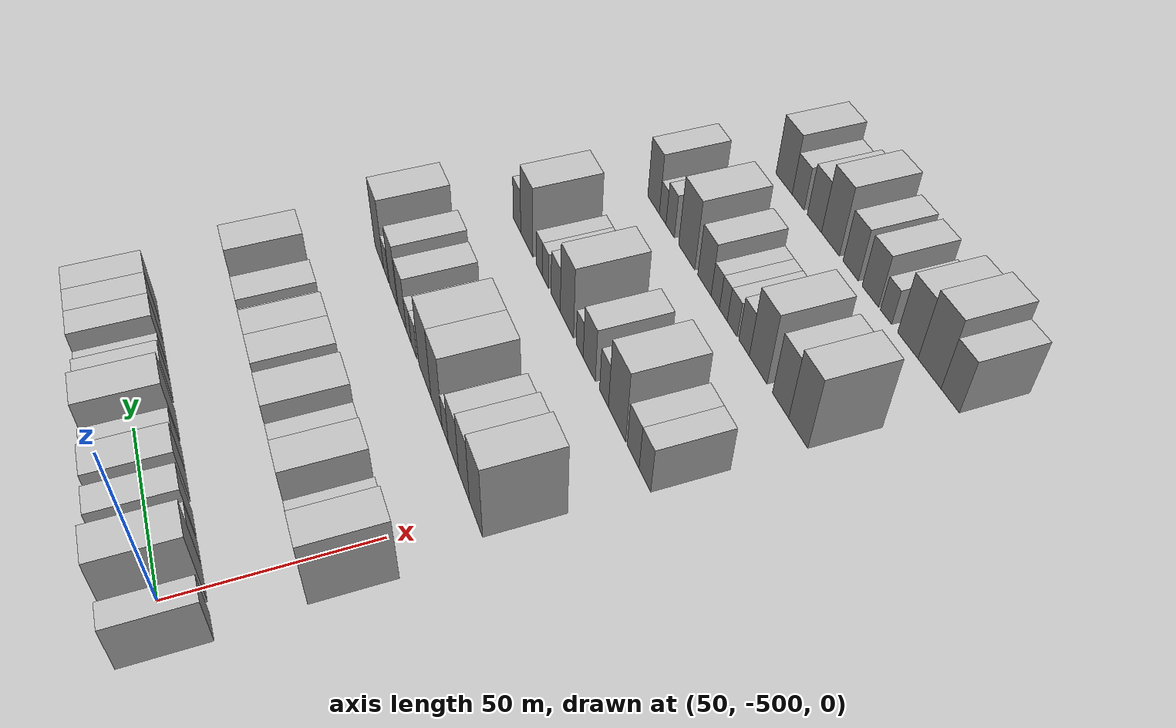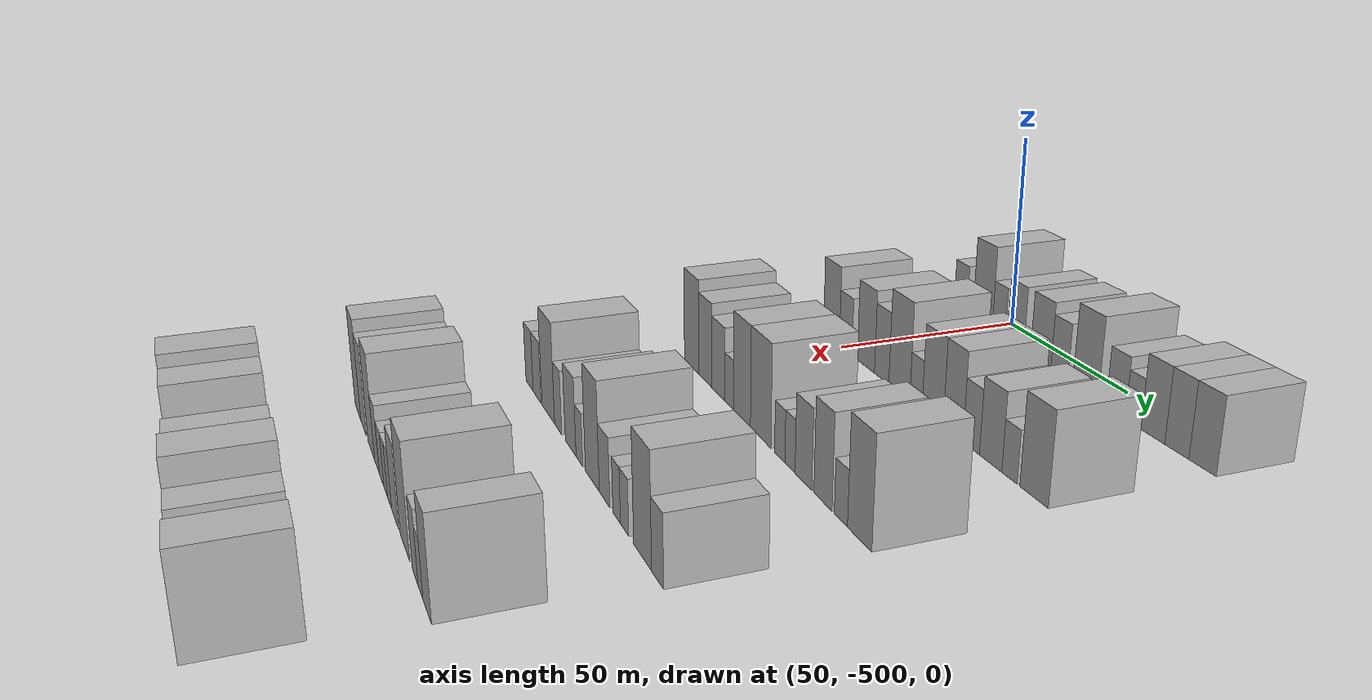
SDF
<sdf version="1.6">
 <world name="default">
  <model name="building_13">
   <static>1</static>
   <pose>50.0000 -510.1457 0 0.000000 0.000000 0.000000</pose>
   <link name="link">
    <pose>0 0 7.50 0 0 0</pose>
    <collision name="collision"><geometry><box><size>20.0000 6.7533 15.0000</size></box></geometry></collision>
    <visual name="visual">
     <cast_shadows>0</cast_shadows>
     <geometry><box><size>20.0000 6.7533 15.0000</size></box></geometry>
     <material>
      <script>
       <uri>model://HANNAS_wall/materials/scripts</uri>
       <uri>model://HANNAS_wall/materials/textures</uri>
       <name>vrc/HANNAS_wall</name>
      </script>
     </material>
    </visual>
   </link>
  </model>
  <model name="building_14">
   <static>1</static>
   <pose>50.0000 -498.9157 0 0.000000 0.000000 0.000000</pose>
   <link name="link">
    <pose>0 0 12.00 0 0 0</pose>
    <collision name="collision"><geometry><box><size>20.0000 9.7067 24.0000</size></box></geometry></collision>
    <visual name="visual">
     <cast_shadows>0</cast_shadows>
     <geometry><box><size>20.0000 9.7067 24.0000</size></box></geometry>
     <material>
      <script>
       <uri>model://HANNAS_wall/materials/scripts</uri>
       <uri>model://HANNAS_wall/materials/textures</uri>
       <name>vrc/HANNAS_wall</name>
      </script>
     </material>
    </visual>
   </link>
  </model>
  <model name="building_15">
   <static>1</static>
   <pose>50.0000 -490.9093 0 0.000000 0.000000 0.000000</pose>
   <link name="link">
    <pose>0 0 7.50 0 0 0</pose>
    <collision name="collision"><geometry><box><size>20.0000 6.3063 15.0000</size></box></geometry></collision>
    <visual name="visual">
     <cast_shadows>0</cast_shadows>
     <geometry><box><size>20.0000 6.3063 15.0000</size></box></geometry>
     <material>
      <script>
       <uri>model://HANNAS_wall/materials/scripts</uri>
       <uri>model://HANNAS_wall/materials/textures</uri>
       <name>vrc/HANNAS_wall</name>
      </script>
     </material>
    </visual>
   </link>
  </model>
  <model name="building_16">
   <static>1</static>
   <pose>50.0000 -482.9304 0 0.000000 0.000000 0.000000</pose>
   <link name="link">
    <pose>0 0 9.00 0 0 0</pose>
    <collision name="collision"><geometry><box><size>20.0000 7.6513 18.0000</size></box></geometry></collision>
    <visual name="visual">
     <cast_shadows>0</cast_shadows>
     <geometry><box><size>20.0000 7.6513 18.0000</size></box></geometry>
     <material>
      <script>
       <uri>model://HANNAS_wall/materials/scripts</uri>
       <uri>model://HANNAS_wall/materials/textures</uri>
       <name>vrc/HANNAS_wall</name>
      </script>
     </material>
    </visual>
   </link>
  </model>
  <model name="building_17">
   <static>1</static>
   <pose>50.0000 -471.6135 0 0.000000 0.000000 0.000000</pose>
   <link name="link">
    <pose>0 0 9.00 0 0 0</pose>
    <collision name="collision"><geometry><box><size>20.0000 8.9825 18.0000</size></box></geometry></collision>
    <visual name="visual">
     <cast_shadows>0</cast_shadows>
     <geometry><box><size>20.0000 8.9825 18.0000</size></box></geometry>
     <material>
      <script>
       <uri>model://HANNAS_wall/materials/scripts</uri>
       <uri>model://HANNAS_wall/materials/textures</uri>
       <name>vrc/HANNAS_wall</name>
      </script>
     </material>
    </visual>
   </link>
  </model>
  <model name="building_18">
   <static>1</static>
   <pose>50.0000 -463.5073 0 0.000000 0.000000 0.000000</pose>
   <link name="link">
    <pose>0 0 7.50 0 0 0</pose>
    <collision name="collision"><geometry><box><size>20.0000 7.2300 15.0000</size></box></geometry></collision>
    <visual name="visual">
     <cast_shadows>0</cast_shadows>
     <geometry><box><size>20.0000 7.2300 15.0000</size></box></geometry>
     <material>
      <script>
       <uri>model://HANNAS_wall/materials/scripts</uri>
       <uri>model://HANNAS_wall/materials/textures</uri>
       <name>vrc/HANNAS_wall</name>
      </script>
     </material>
    </visual>
   </link>
  </model>
  <model name="building_19">
   <static>1</static>
   <pose>50.0000 -452.8187 0 0.000000 0.000000 0.000000</pose>
   <link name="link">
    <pose>0 0 10.50 0 0 0</pose>
    <collision name="collision"><geometry><box><size>20.0000 10.1472 21.0000</size></box></geometry></collision>
    <visual name="visual">
     <cast_shadows>0</cast_shadows>
     <geometry><box><size>20.0000 10.1472 21.0000</size></box></geometry>
     <material>
      <script>
       <uri>model://HANNAS_wall/materials/scripts</uri>
       <uri>model://HANNAS_wall/materials/textures</uri>
       <name>vrc/HANNAS_wall</name>
      </script>
     </material>
    </visual>
   </link>
  </model>
  <model name="building_20">
   <static>1</static>
   <pose>50.0000 -441.1250 0 0.000000 0.000000 0.000000</pose>
   <link name="link">
    <pose>0 0 7.50 0 0 0</pose>
    <collision name="collision"><geometry><box><size>20.0000 7.2403 15.0000</size></box></geometry></collision>
    <visual name="visual">
     <cast_shadows>0</cast_shadows>
     <geometry><box><size>20.0000 7.2403 15.0000</size></box></geometry>
     <material>
      <script>
       <uri>model://HANNAS_wall/materials/scripts</uri>
       <uri>model://HANNAS_wall/materials/textures</uri>
       <name>vrc/HANNAS_wall</name>
      </script>
     </material>
    </visual>
   </link>
  </model>
  <model name="building_21">
   <static>1</static>
   <pose>50.0000 -434.6832 0 0.000000 0.000000 0.000000</pose>
   <link name="link">
    <pose>0 0 6.00 0 0 0</pose>
    <collision name="collision"><geometry><box><size>20.0000 5.6432 12.0000</size></box></geometry></collision>
    <visual name="visual">
     <cast_shadows>0</cast_shadows>
     <geometry><box><size>20.0000 5.6432 12.0000</size></box></geometry>
     <material>
      <script>
       <uri>model://HANNAS_wall/materials/scripts</uri>
       <uri>model://HANNAS_wall/materials/textures</uri>
       <name>vrc/HANNAS_wall</name>
      </script>
     </material>
    </visual>
   </link>
  </model>
  <model name="building_22">
   <static>1</static>
   <pose>50.0000 -427.7322 0 0.000000 0.000000 0.000000</pose>
   <link name="link">
    <pose>0 0 9.00 0 0 0</pose>
    <collision name="collision"><geometry><box><size>20.0000 8.2589 18.0000</size></box></geometry></collision>
    <visual name="visual">
     <cast_shadows>0</cast_shadows>
     <geometry><box><size>20.0000 8.2589 18.0000</size></box></geometry>
     <material>
      <script>
       <uri>model://HANNAS_wall/materials/scripts</uri>
       <uri>model://HANNAS_wall/materials/textures</uri>
       <name>vrc/HANNAS_wall</name>
      </script>
     </material>
    </visual>
   </link>
  </model>
  <model name="building_23">
   <static>1</static>
   <pose>50.0000 -419.6220 0 0.000000 0.000000 0.000000</pose>
   <link name="link">
    <pose>0 0 9.00 0 0 0</pose>
    <collision name="collision"><geometry><box><size>20.0000 7.9615 18.0000</size></box></geometry></collision>
    <visual name="visual">
     <cast_shadows>0</cast_shadows>
     <geometry><box><size>20.0000 7.9615 18.0000</size></box></geometry>
     <material>
      <script>
       <uri>model://HANNAS_wall/materials/scripts</uri>
       <uri>model://HANNAS_wall/materials/textures</uri>
       <name>vrc/HANNAS_wall</name>
      </script>
     </material>
    </visual>
   </link>
  </model>
  <model name="building_24">
   <static>1</static>
   <pose>50.0000 -411.3302 0 0.000000 0.000000 0.000000</pose>
   <link name="link">
    <pose>0 0 9.00 0 0 0</pose>
    <collision name="collision"><geometry><box><size>20.0000 8.6222 18.0000</size></box></geometry></collision>
    <visual name="visual">
     <cast_shadows>0</cast_shadows>
     <geometry><box><size>20.0000 8.6222 18.0000</size></box></geometry>
     <material>
      <script>
       <uri>model://HANNAS_wall/materials/scripts</uri>
       <uri>model://HANNAS_wall/materials/textures</uri>
       <name>vrc/HANNAS_wall</name>
      </script>
     </material>
    </visual>
   </link>
  </model>
  <model name="building_152">
   <static>1</static>
   <pose>90.0000 -506.4639 0 0.000000 0.000000 0.000000</pose>
   <link name="link">
    <pose>0 0 10.50 0 0 0</pose>
    <collision name="collision"><geometry><box><size>20.0000 9.5231 21.0000</size></box></geometry></collision>
    <visual name="visual">
     <cast_shadows>0</cast_shadows>
     <geometry><box><size>20.0000 9.5231 21.0000</size></box></geometry>
     <material>
      <script>
       <uri>model://HANNAS_wall/materials/scripts</uri>
       <uri>model://HANNAS_wall/materials/textures</uri>
       <name>vrc/HANNAS_wall</name>
      </script>
     </material>
    </visual>
   </link>
  </model>
  <model name="building_153">
   <static>1</static>
   <pose>90.0000 -498.0626 0 0.000000 0.000000 0.000000</pose>
   <link name="link">
    <pose>0 0 7.50 0 0 0</pose>
    <collision name="collision"><geometry><box><size>20.0000 7.2795 15.0000</size></box></geometry></collision>
    <visual name="visual">
     <cast_shadows>0</cast_shadows>
     <geometry><box><size>20.0000 7.2795 15.0000</size></box></geometry>
     <material>
      <script>
       <uri>model://HANNAS_wall/materials/scripts</uri>
       <uri>model://HANNAS_wall/materials/textures</uri>
       <name>vrc/HANNAS_wall</name>
      </script>
     </material>
    </visual>
   </link>
  </model>
  <model name="building_154">
   <static>1</static>
   <pose>90.0000 -486.7534 0 0.000000 0.000000 0.000000</pose>
   <link name="link">
    <pose>0 0 10.50 0 0 0</pose>
    <collision name="collision"><geometry><box><size>20.0000 9.3388 21.0000</size></box></geometry></collision>
    <visual name="visual">
     <cast_shadows>0</cast_shadows>
     <geometry><box><size>20.0000 9.3388 21.0000</size></box></geometry>
     <material>
      <script>
       <uri>model://HANNAS_wall/materials/scripts</uri>
       <uri>model://HANNAS_wall/materials/textures</uri>
       <name>vrc/HANNAS_wall</name>
      </script>
     </material>
    </visual>
   </link>
  </model>
  <model name="building_155">
   <static>1</static>
   <pose>90.0000 -478.3522 0 0.000000 0.000000 0.000000</pose>
   <link name="link">
    <pose>0 0 9.00 0 0 0</pose>
    <collision name="collision"><geometry><box><size>20.0000 7.4637 18.0000</size></box></geometry></collision>
    <visual name="visual">
     <cast_shadows>0</cast_shadows>
     <geometry><box><size>20.0000 7.4637 18.0000</size></box></geometry>
     <material>
      <script>
       <uri>model://HANNAS_wall/materials/scripts</uri>
       <uri>model://HANNAS_wall/materials/textures</uri>
       <name>vrc/HANNAS_wall</name>
      </script>
     </material>
    </visual>
   </link>
  </model>
  <model name="building_156">
   <static>1</static>
   <pose>90.0000 -469.3864 0 0.000000 0.000000 0.000000</pose>
   <link name="link">
    <pose>0 0 12.00 0 0 0</pose>
    <collision name="collision"><geometry><box><size>20.0000 10.4678 24.0000</size></box></geometry></collision>
    <visual name="visual">
     <cast_shadows>0</cast_shadows>
     <geometry><box><size>20.0000 10.4678 24.0000</size></box></geometry>
     <material>
      <script>
       <uri>model://HANNAS_wall/materials/scripts</uri>
       <uri>model://HANNAS_wall/materials/textures</uri>
       <name>vrc/HANNAS_wall</name>
      </script>
     </material>
    </visual>
   </link>
  </model>
  <model name="building_157">
   <static>1</static>
   <pose>90.0000 -461.2392 0 0.000000 0.000000 0.000000</pose>
   <link name="link">
    <pose>0 0 6.00 0 0 0</pose>
    <collision name="collision"><geometry><box><size>20.0000 5.8267 12.0000</size></box></geometry></collision>
    <visual name="visual">
     <cast_shadows>0</cast_shadows>
     <geometry><box><size>20.0000 5.8267 12.0000</size></box></geometry>
     <material>
      <script>
       <uri>model://HANNAS_wall/materials/scripts</uri>
       <uri>model://HANNAS_wall/materials/textures</uri>
       <name>vrc/HANNAS_wall</name>
      </script>
     </material>
    </visual>
   </link>
  </model>
  <model name="building_158">
   <static>1</static>
   <pose>90.0000 -453.4991 0 0.000000 0.000000 0.000000</pose>
   <link name="link">
    <pose>0 0 10.50 0 0 0</pose>
    <collision name="collision"><geometry><box><size>20.0000 9.6535 21.0000</size></box></geometry></collision>
    <visual name="visual">
     <cast_shadows>0</cast_shadows>
     <geometry><box><size>20.0000 9.6535 21.0000</size></box></geometry>
     <material>
      <script>
       <uri>model://HANNAS_wall/materials/scripts</uri>
       <uri>model://HANNAS_wall/materials/textures</uri>
       <name>vrc/HANNAS_wall</name>
      </script>
     </material>
    </visual>
   </link>
  </model>
  <model name="building_159">
   <static>1</static>
   <pose>90.0000 -444.3655 0 0.000000 0.000000 0.000000</pose>
   <link name="link">
    <pose>0 0 10.50 0 0 0</pose>
    <collision name="collision"><geometry><box><size>20.0000 8.6137 21.0000</size></box></geometry></collision>
    <visual name="visual">
     <cast_shadows>0</cast_shadows>
     <geometry><box><size>20.0000 8.6137 21.0000</size></box></geometry>
     <material>
      <script>
       <uri>model://HANNAS_wall/materials/scripts</uri>
       <uri>model://HANNAS_wall/materials/textures</uri>
       <name>vrc/HANNAS_wall</name>
      </script>
     </material>
    </visual>
   </link>
  </model>
  <model name="building_160">
   <static>1</static>
   <pose>90.0000 -436.6508 0 0.000000 0.000000 0.000000</pose>
   <link name="link">
    <pose>0 0 7.50 0 0 0</pose>
    <collision name="collision"><geometry><box><size>20.0000 6.8157 15.0000</size></box></geometry></collision>
    <visual name="visual">
     <cast_shadows>0</cast_shadows>
     <geometry><box><size>20.0000 6.8157 15.0000</size></box></geometry>
     <material>
      <script>
       <uri>model://HANNAS_wall/materials/scripts</uri>
       <uri>model://HANNAS_wall/materials/textures</uri>
       <name>vrc/HANNAS_wall</name>
      </script>
     </material>
    </visual>
   </link>
  </model>
  <model name="building_161">
   <static>1</static>
   <pose>90.0000 -428.8148 0 0.000000 0.000000 0.000000</pose>
   <link name="link">
    <pose>0 0 9.00 0 0 0</pose>
    <collision name="collision"><geometry><box><size>20.0000 8.8563 18.0000</size></box></geometry></collision>
    <visual name="visual">
     <cast_shadows>0</cast_shadows>
     <geometry><box><size>20.0000 8.8563 18.0000</size></box></geometry>
     <material>
      <script>
       <uri>model://HANNAS_wall/materials/scripts</uri>
       <uri>model://HANNAS_wall/materials/textures</uri>
       <name>vrc/HANNAS_wall</name>
      </script>
     </material>
    </visual>
   </link>
  </model>
  <model name="building_162">
   <static>1</static>
   <pose>90.0000 -421.4946 0 0.000000 0.000000 0.000000</pose>
   <link name="link">
    <pose>0 0 6.00 0 0 0</pose>
    <collision name="collision"><geometry><box><size>20.0000 5.7842 12.0000</size></box></geometry></collision>
    <visual name="visual">
     <cast_shadows>0</cast_shadows>
     <geometry><box><size>20.0000 5.7842 12.0000</size></box></geometry>
     <material>
      <script>
       <uri>model://HANNAS_wall/materials/scripts</uri>
       <uri>model://HANNAS_wall/materials/textures</uri>
       <name>vrc/HANNAS_wall</name>
      </script>
     </material>
    </visual>
   </link>
  </model>
  <model name="building_163">
   <static>1</static>
   <pose>90.0000 -412.4998 0 0.000000 0.000000 0.000000</pose>
   <link name="link">
    <pose>0 0 10.50 0 0 0</pose>
    <collision name="collision"><geometry><box><size>20.0000 10.2055 21.0000</size></box></geometry></collision>
    <visual name="visual">
     <cast_shadows>0</cast_shadows>
     <geometry><box><size>20.0000 10.2055 21.0000</size></box></geometry>
     <material>
      <script>
       <uri>model://HANNAS_wall/materials/scripts</uri>
       <uri>model://HANNAS_wall/materials/textures</uri>
       <name>vrc/HANNAS_wall</name>
      </script>
     </material>
    </visual>
   </link>
  </model>
  <model name="building_291">
   <static>1</static>
   <pose>130.0000 -501.7654 0 0.000000 0.000000 0.000000</pose>
   <link name="link">
    <pose>0 0 12.00 0 0 0</pose>
    <collision name="collision"><geometry><box><size>20.0000 10.2132 24.0000</size></box></geometry></collision>
    <visual name="visual">
     <cast_shadows>0</cast_shadows>
     <geometry><box><size>20.0000 10.2132 24.0000</size></box></geometry>
     <material>
      <script>
       <uri>model://HANNAS_wall/materials/scripts</uri>
       <uri>model://HANNAS_wall/materials/textures</uri>
       <name>vrc/HANNAS_wall</name>
      </script>
     </material>
    </visual>
   </link>
  </model>
  <model name="building_292">
   <static>1</static>
   <pose>130.0000 -492.2619 0 0.000000 0.000000 0.000000</pose>
   <link name="link">
    <pose>0 0 10.50 0 0 0</pose>
    <collision name="collision"><geometry><box><size>20.0000 8.7939 21.0000</size></box></geometry></collision>
    <visual name="visual">
     <cast_shadows>0</cast_shadows>
     <geometry><box><size>20.0000 8.7939 21.0000</size></box></geometry>
     <material>
      <script>
       <uri>model://HANNAS_wall/materials/scripts</uri>
       <uri>model://HANNAS_wall/materials/textures</uri>
       <name>vrc/HANNAS_wall</name>
      </script>
     </material>
    </visual>
   </link>
  </model>
  <model name="building_293">
   <static>1</static>
   <pose>130.0000 -483.4574 0 0.000000 0.000000 0.000000</pose>
   <link name="link">
    <pose>0 0 9.00 0 0 0</pose>
    <collision name="collision"><geometry><box><size>20.0000 8.8152 18.0000</size></box></geometry></collision>
    <visual name="visual">
     <cast_shadows>0</cast_shadows>
     <geometry><box><size>20.0000 8.8152 18.0000</size></box></geometry>
     <material>
      <script>
       <uri>model://HANNAS_wall/materials/scripts</uri>
       <uri>model://HANNAS_wall/materials/textures</uri>
       <name>vrc/HANNAS_wall</name>
      </script>
     </material>
    </visual>
   </link>
  </model>
  <model name="building_294">
   <static>1</static>
   <pose>130.0000 -476.3297 0 0.000000 0.000000 0.000000</pose>
   <link name="link">
    <pose>0 0 6.00 0 0 0</pose>
    <collision name="collision"><geometry><box><size>20.0000 5.4403 12.0000</size></box></geometry></collision>
    <visual name="visual">
     <cast_shadows>0</cast_shadows>
     <geometry><box><size>20.0000 5.4403 12.0000</size></box></geometry>
     <material>
      <script>
       <uri>model://HANNAS_wall/materials/scripts</uri>
       <uri>model://HANNAS_wall/materials/textures</uri>
       <name>vrc/HANNAS_wall</name>
      </script>
     </material>
    </visual>
   </link>
  </model>
  <model name="building_295">
   <static>1</static>
   <pose>130.0000 -468.5632 0 0.000000 0.000000 0.000000</pose>
   <link name="link">
    <pose>0 0 12.00 0 0 0</pose>
    <collision name="collision"><geometry><box><size>20.0000 10.0926 24.0000</size></box></geometry></collision>
    <visual name="visual">
     <cast_shadows>0</cast_shadows>
     <geometry><box><size>20.0000 10.0926 24.0000</size></box></geometry>
     <material>
      <script>
       <uri>model://HANNAS_wall/materials/scripts</uri>
       <uri>model://HANNAS_wall/materials/textures</uri>
       <name>vrc/HANNAS_wall</name>
      </script>
     </material>
    </visual>
   </link>
  </model>
  <model name="building_296">
   <static>1</static>
   <pose>130.0000 -457.7151 0 0.000000 0.000000 0.000000</pose>
   <link name="link">
    <pose>0 0 12.00 0 0 0</pose>
    <collision name="collision"><geometry><box><size>20.0000 11.6036 24.0000</size></box></geometry></collision>
    <visual name="visual">
     <cast_shadows>0</cast_shadows>
     <geometry><box><size>20.0000 11.6036 24.0000</size></box></geometry>
     <material>
      <script>
       <uri>model://HANNAS_wall/materials/scripts</uri>
       <uri>model://HANNAS_wall/materials/textures</uri>
       <name>vrc/HANNAS_wall</name>
      </script>
     </material>
    </visual>
   </link>
  </model>
  <model name="building_297">
   <static>1</static>
   <pose>130.0000 -447.1811 0 0.000000 0.000000 0.000000</pose>
   <link name="link">
    <pose>0 0 6.00 0 0 0</pose>
    <collision name="collision"><geometry><box><size>20.0000 5.4644 12.0000</size></box></geometry></collision>
    <visual name="visual">
     <cast_shadows>0</cast_shadows>
     <geometry><box><size>20.0000 5.4644 12.0000</size></box></geometry>
     <material>
      <script>
       <uri>model://HANNAS_wall/materials/scripts</uri>
       <uri>model://HANNAS_wall/materials/textures</uri>
       <name>vrc/HANNAS_wall</name>
      </script>
     </material>
    </visual>
   </link>
  </model>
  <model name="building_298">
   <static>1</static>
   <pose>130.0000 -441.8219 0 0.000000 0.000000 0.000000</pose>
   <link name="link">
    <pose>0 0 6.00 0 0 0</pose>
    <collision name="collision"><geometry><box><size>20.0000 5.2540 12.0000</size></box></geometry></collision>
    <visual name="visual">
     <cast_shadows>0</cast_shadows>
     <geometry><box><size>20.0000 5.2540 12.0000</size></box></geometry>
     <material>
      <script>
       <uri>model://HANNAS_wall/materials/scripts</uri>
       <uri>model://HANNAS_wall/materials/textures</uri>
       <name>vrc/HANNAS_wall</name>
      </script>
     </material>
    </visual>
   </link>
  </model>
  <model name="building_299">
   <static>1</static>
   <pose>130.0000 -435.0427 0 0.000000 0.000000 0.000000</pose>
   <link name="link">
    <pose>0 0 9.00 0 0 0</pose>
    <collision name="collision"><geometry><box><size>20.0000 8.3045 18.0000</size></box></geometry></collision>
    <visual name="visual">
     <cast_shadows>0</cast_shadows>
     <geometry><box><size>20.0000 8.3045 18.0000</size></box></geometry>
     <material>
      <script>
       <uri>model://HANNAS_wall/materials/scripts</uri>
       <uri>model://HANNAS_wall/materials/textures</uri>
       <name>vrc/HANNAS_wall</name>
      </script>
     </material>
    </visual>
   </link>
  </model>
  <model name="building_300">
   <static>1</static>
   <pose>130.0000 -425.6519 0 0.000000 0.000000 0.000000</pose>
   <link name="link">
    <pose>0 0 10.50 0 0 0</pose>
    <collision name="collision"><geometry><box><size>20.0000 8.4772 21.0000</size></box></geometry></collision>
    <visual name="visual">
     <cast_shadows>0</cast_shadows>
     <geometry><box><size>20.0000 8.4772 21.0000</size></box></geometry>
     <material>
      <script>
       <uri>model://HANNAS_wall/materials/scripts</uri>
       <uri>model://HANNAS_wall/materials/textures</uri>
       <name>vrc/HANNAS_wall</name>
      </script>
     </material>
    </visual>
   </link>
  </model>
  <model name="building_301">
   <static>1</static>
   <pose>130.0000 -417.4935 0 0.000000 0.000000 0.000000</pose>
   <link name="link">
    <pose>0 0 6.00 0 0 0</pose>
    <collision name="collision"><geometry><box><size>20.0000 5.8395 12.0000</size></box></geometry></collision>
    <visual name="visual">
     <cast_shadows>0</cast_shadows>
     <geometry><box><size>20.0000 5.8395 12.0000</size></box></geometry>
     <material>
      <script>
       <uri>model://HANNAS_wall/materials/scripts</uri>
       <uri>model://HANNAS_wall/materials/textures</uri>
       <name>vrc/HANNAS_wall</name>
      </script>
     </material>
    </visual>
   </link>
  </model>
  <model name="building_302">
   <static>1</static>
   <pose>130.0000 -409.4521 0 0.000000 0.000000 0.000000</pose>
   <link name="link">
    <pose>0 0 12.00 0 0 0</pose>
    <collision name="collision"><geometry><box><size>20.0000 10.2434 24.0000</size></box></geometry></collision>
    <visual name="visual">
     <cast_shadows>0</cast_shadows>
     <geometry><box><size>20.0000 10.2434 24.0000</size></box></geometry>
     <material>
      <script>
       <uri>model://HANNAS_wall/materials/scripts</uri>
       <uri>model://HANNAS_wall/materials/textures</uri>
       <name>vrc/HANNAS_wall</name>
      </script>
     </material>
    </visual>
   </link>
  </model>
  <model name="building_433">
   <static>1</static>
   <pose>170.0000 -503.9211 0 0.000000 0.000000 0.000000</pose>
   <link name="link">
    <pose>0 0 7.50 0 0 0</pose>
    <collision name="collision"><geometry><box><size>20.0000 7.0839 15.0000</size></box></geometry></collision>
    <visual name="visual">
     <cast_shadows>0</cast_shadows>
     <geometry><box><size>20.0000 7.0839 15.0000</size></box></geometry>
     <material>
      <script>
       <uri>model://HANNAS_wall/materials/scripts</uri>
       <uri>model://HANNAS_wall/materials/textures</uri>
       <name>vrc/HANNAS_wall</name>
      </script>
     </material>
    </visual>
   </link>
  </model>
  <model name="building_434">
   <static>1</static>
   <pose>170.0000 -496.6546 0 0.000000 0.000000 0.000000</pose>
   <link name="link">
    <pose>0 0 7.50 0 0 0</pose>
    <collision name="collision"><geometry><box><size>20.0000 7.4492 15.0000</size></box></geometry></collision>
    <visual name="visual">
     <cast_shadows>0</cast_shadows>
     <geometry><box><size>20.0000 7.4492 15.0000</size></box></geometry>
     <material>
      <script>
       <uri>model://HANNAS_wall/materials/scripts</uri>
       <uri>model://HANNAS_wall/materials/textures</uri>
       <name>vrc/HANNAS_wall</name>
      </script>
     </material>
    </visual>
   </link>
  </model>
  <model name="building_435">
   <static>1</static>
   <pose>170.0000 -486.2557 0 0.000000 0.000000 0.000000</pose>
   <link name="link">
    <pose>0 0 12.00 0 0 0</pose>
    <collision name="collision"><geometry><box><size>20.0000 11.3486 24.0000</size></box></geometry></collision>
    <visual name="visual">
     <cast_shadows>0</cast_shadows>
     <geometry><box><size>20.0000 11.3486 24.0000</size></box></geometry>
     <material>
      <script>
       <uri>model://HANNAS_wall/materials/scripts</uri>
       <uri>model://HANNAS_wall/materials/textures</uri>
       <name>vrc/HANNAS_wall</name>
      </script>
     </material>
    </visual>
   </link>
  </model>
  <model name="building_436">
   <static>1</static>
   <pose>170.0000 -477.5650 0 0.000000 0.000000 0.000000</pose>
   <link name="link">
    <pose>0 0 7.50 0 0 0</pose>
    <collision name="collision"><geometry><box><size>20.0000 6.0329 15.0000</size></box></geometry></collision>
    <visual name="visual">
     <cast_shadows>0</cast_shadows>
     <geometry><box><size>20.0000 6.0329 15.0000</size></box></geometry>
     <material>
      <script>
       <uri>model://HANNAS_wall/materials/scripts</uri>
       <uri>model://HANNAS_wall/materials/textures</uri>
       <name>vrc/HANNAS_wall</name>
      </script>
     </material>
    </visual>
   </link>
  </model>
  <model name="building_437">
   <static>1</static>
   <pose>170.0000 -467.2080 0 0.000000 0.000000 0.000000</pose>
   <link name="link">
    <pose>0 0 9.00 0 0 0</pose>
    <collision name="collision"><geometry><box><size>20.0000 8.6811 18.0000</size></box></geometry></collision>
    <visual name="visual">
     <cast_shadows>0</cast_shadows>
     <geometry><box><size>20.0000 8.6811 18.0000</size></box></geometry>
     <material>
      <script>
       <uri>model://HANNAS_wall/materials/scripts</uri>
       <uri>model://HANNAS_wall/materials/textures</uri>
       <name>vrc/HANNAS_wall</name>
      </script>
     </material>
    </visual>
   </link>
  </model>
  <model name="building_438">
   <static>1</static>
   <pose>170.0000 -460.2719 0 0.000000 0.000000 0.000000</pose>
   <link name="link">
    <pose>0 0 6.00 0 0 0</pose>
    <collision name="collision"><geometry><box><size>20.0000 5.1911 12.0000</size></box></geometry></collision>
    <visual name="visual">
     <cast_shadows>0</cast_shadows>
     <geometry><box><size>20.0000 5.1911 12.0000</size></box></geometry>
     <material>
      <script>
       <uri>model://HANNAS_wall/materials/scripts</uri>
       <uri>model://HANNAS_wall/materials/textures</uri>
       <name>vrc/HANNAS_wall</name>
      </script>
     </material>
    </visual>
   </link>
  </model>
  <model name="building_439">
   <static>1</static>
   <pose>170.0000 -450.5755 0 0.000000 0.000000 0.000000</pose>
   <link name="link">
    <pose>0 0 12.00 0 0 0</pose>
    <collision name="collision"><geometry><box><size>20.0000 10.2019 24.0000</size></box></geometry></collision>
    <visual name="visual">
     <cast_shadows>0</cast_shadows>
     <geometry><box><size>20.0000 10.2019 24.0000</size></box></geometry>
     <material>
      <script>
       <uri>model://HANNAS_wall/materials/scripts</uri>
       <uri>model://HANNAS_wall/materials/textures</uri>
       <name>vrc/HANNAS_wall</name>
      </script>
     </material>
    </visual>
   </link>
  </model>
  <model name="building_440">
   <static>1</static>
   <pose>170.0000 -441.8204 0 0.000000 0.000000 0.000000</pose>
   <link name="link">
    <pose>0 0 7.50 0 0 0</pose>
    <collision name="collision"><geometry><box><size>20.0000 7.3082 15.0000</size></box></geometry></collision>
    <visual name="visual">
     <cast_shadows>0</cast_shadows>
     <geometry><box><size>20.0000 7.3082 15.0000</size></box></geometry>
     <material>
      <script>
       <uri>model://HANNAS_wall/materials/scripts</uri>
       <uri>model://HANNAS_wall/materials/textures</uri>
       <name>vrc/HANNAS_wall</name>
      </script>
     </material>
    </visual>
   </link>
  </model>
  <model name="building_441">
   <static>1</static>
   <pose>170.0000 -433.6958 0 0.000000 0.000000 0.000000</pose>
   <link name="link">
    <pose>0 0 6.00 0 0 0</pose>
    <collision name="collision"><geometry><box><size>20.0000 4.9410 12.0000</size></box></geometry></collision>
    <visual name="visual">
     <cast_shadows>0</cast_shadows>
     <geometry><box><size>20.0000 4.9410 12.0000</size></box></geometry>
     <material>
      <script>
       <uri>model://HANNAS_wall/materials/scripts</uri>
       <uri>model://HANNAS_wall/materials/textures</uri>
       <name>vrc/HANNAS_wall</name>
      </script>
     </material>
    </visual>
   </link>
  </model>
  <model name="building_442">
   <static>1</static>
   <pose>170.0000 -428.5701 0 0.000000 0.000000 0.000000</pose>
   <link name="link">
    <pose>0 0 6.00 0 0 0</pose>
    <collision name="collision"><geometry><box><size>20.0000 5.3104 12.0000</size></box></geometry></collision>
    <visual name="visual">
     <cast_shadows>0</cast_shadows>
     <geometry><box><size>20.0000 5.3104 12.0000</size></box></geometry>
     <material>
      <script>
       <uri>model://HANNAS_wall/materials/scripts</uri>
       <uri>model://HANNAS_wall/materials/textures</uri>
       <name>vrc/HANNAS_wall</name>
      </script>
     </material>
    </visual>
   </link>
  </model>
  <model name="building_443">
   <static>1</static>
   <pose>170.0000 -417.6106 0 0.000000 0.000000 0.000000</pose>
   <link name="link">
    <pose>0 0 12.00 0 0 0</pose>
    <collision name="collision"><geometry><box><size>20.0000 10.6087 24.0000</size></box></geometry></collision>
    <visual name="visual">
     <cast_shadows>0</cast_shadows>
     <geometry><box><size>20.0000 10.6087 24.0000</size></box></geometry>
     <material>
      <script>
       <uri>model://HANNAS_wall/materials/scripts</uri>
       <uri>model://HANNAS_wall/materials/textures</uri>
       <name>vrc/HANNAS_wall</name>
      </script>
     </material>
    </visual>
   </link>
  </model>
  <model name="building_444">
   <static>1</static>
   <pose>170.0000 -408.9530 0 0.000000 0.000000 0.000000</pose>
   <link name="link">
    <pose>0 0 7.50 0 0 0</pose>
    <collision name="collision"><geometry><box><size>20.0000 6.7063 15.0000</size></box></geometry></collision>
    <visual name="visual">
     <cast_shadows>0</cast_shadows>
     <geometry><box><size>20.0000 6.7063 15.0000</size></box></geometry>
     <material>
      <script>
       <uri>model://HANNAS_wall/materials/scripts</uri>
       <uri>model://HANNAS_wall/materials/textures</uri>
       <name>vrc/HANNAS_wall</name>
      </script>
     </material>
    </visual>
   </link>
  </model>
  <model name="building_575">
   <static>1</static>
   <pose>210.0000 -502.7205 0 0.000000 0.000000 0.000000</pose>
   <link name="link">
    <pose>0 0 12.00 0 0 0</pose>
    <collision name="collision"><geometry><box><size>20.0000 9.8044 24.0000</size></box></geometry></collision>
    <visual name="visual">
     <cast_shadows>0</cast_shadows>
     <geometry><box><size>20.0000 9.8044 24.0000</size></box></geometry>
     <material>
      <script>
       <uri>model://HANNAS_wall/materials/scripts</uri>
       <uri>model://HANNAS_wall/materials/textures</uri>
       <name>vrc/HANNAS_wall</name>
      </script>
     </material>
    </visual>
   </link>
  </model>
  <model name="building_576">
   <static>1</static>
   <pose>210.0000 -493.4669 0 0.000000 0.000000 0.000000</pose>
   <link name="link">
    <pose>0 0 10.50 0 0 0</pose>
    <collision name="collision"><geometry><box><size>20.0000 8.7028 21.0000</size></box></geometry></collision>
    <visual name="visual">
     <cast_shadows>0</cast_shadows>
     <geometry><box><size>20.0000 8.7028 21.0000</size></box></geometry>
     <material>
      <script>
       <uri>model://HANNAS_wall/materials/scripts</uri>
       <uri>model://HANNAS_wall/materials/textures</uri>
       <name>vrc/HANNAS_wall</name>
      </script>
     </material>
    </visual>
   </link>
  </model>
  <model name="building_577">
   <static>1</static>
   <pose>210.0000 -481.0993 0 0.000000 0.000000 0.000000</pose>
   <link name="link">
    <pose>0 0 12.00 0 0 0</pose>
    <collision name="collision"><geometry><box><size>20.0000 10.0324 24.0000</size></box></geometry></collision>
    <visual name="visual">
     <cast_shadows>0</cast_shadows>
     <geometry><box><size>20.0000 10.0324 24.0000</size></box></geometry>
     <material>
      <script>
       <uri>model://HANNAS_wall/materials/scripts</uri>
       <uri>model://HANNAS_wall/materials/textures</uri>
       <name>vrc/HANNAS_wall</name>
      </script>
     </material>
    </visual>
   </link>
  </model>
  <model name="building_578">
   <static>1</static>
   <pose>210.0000 -472.9864 0 0.000000 0.000000 0.000000</pose>
   <link name="link">
    <pose>0 0 7.50 0 0 0</pose>
    <collision name="collision"><geometry><box><size>20.0000 6.1934 15.0000</size></box></geometry></collision>
    <visual name="visual">
     <cast_shadows>0</cast_shadows>
     <geometry><box><size>20.0000 6.1934 15.0000</size></box></geometry>
     <material>
      <script>
       <uri>model://HANNAS_wall/materials/scripts</uri>
       <uri>model://HANNAS_wall/materials/textures</uri>
       <name>vrc/HANNAS_wall</name>
      </script>
     </material>
    </visual>
   </link>
  </model>
  <model name="building_579">
   <static>1</static>
   <pose>210.0000 -465.9052 0 0.000000 0.000000 0.000000</pose>
   <link name="link">
    <pose>0 0 6.00 0 0 0</pose>
    <collision name="collision"><geometry><box><size>20.0000 5.9690 12.0000</size></box></geometry></collision>
    <visual name="visual">
     <cast_shadows>0</cast_shadows>
     <geometry><box><size>20.0000 5.9690 12.0000</size></box></geometry>
     <material>
      <script>
       <uri>model://HANNAS_wall/materials/scripts</uri>
       <uri>model://HANNAS_wall/materials/textures</uri>
       <name>vrc/HANNAS_wall</name>
      </script>
     </material>
    </visual>
   </link>
  </model>
  <model name="building_580">
   <static>1</static>
   <pose>210.0000 -460.5035 0 0.000000 0.000000 0.000000</pose>
   <link name="link">
    <pose>0 0 6.00 0 0 0</pose>
    <collision name="collision"><geometry><box><size>20.0000 4.8344 12.0000</size></box></geometry></collision>
    <visual name="visual">
     <cast_shadows>0</cast_shadows>
     <geometry><box><size>20.0000 4.8344 12.0000</size></box></geometry>
     <material>
      <script>
       <uri>model://HANNAS_wall/materials/scripts</uri>
       <uri>model://HANNAS_wall/materials/textures</uri>
       <name>vrc/HANNAS_wall</name>
      </script>
     </material>
    </visual>
   </link>
  </model>
  <model name="building_581">
   <static>1</static>
   <pose>210.0000 -455.4367 0 0.000000 0.000000 0.000000</pose>
   <link name="link">
    <pose>0 0 6.00 0 0 0</pose>
    <collision name="collision"><geometry><box><size>20.0000 5.2993 12.0000</size></box></geometry></collision>
    <visual name="visual">
     <cast_shadows>0</cast_shadows>
     <geometry><box><size>20.0000 5.2993 12.0000</size></box></geometry>
     <material>
      <script>
       <uri>model://HANNAS_wall/materials/scripts</uri>
       <uri>model://HANNAS_wall/materials/textures</uri>
       <name>vrc/HANNAS_wall</name>
      </script>
     </material>
    </visual>
   </link>
  </model>
  <model name="building_582">
   <static>1</static>
   <pose>210.0000 -448.4609 0 0.000000 0.000000 0.000000</pose>
   <link name="link">
    <pose>0 0 9.00 0 0 0</pose>
    <collision name="collision"><geometry><box><size>20.0000 8.6523 18.0000</size></box></geometry></collision>
    <visual name="visual">
     <cast_shadows>0</cast_shadows>
     <geometry><box><size>20.0000 8.6523 18.0000</size></box></geometry>
     <material>
      <script>
       <uri>model://HANNAS_wall/materials/scripts</uri>
       <uri>model://HANNAS_wall/materials/textures</uri>
       <name>vrc/HANNAS_wall</name>
      </script>
     </material>
    </visual>
   </link>
  </model>
  <model name="building_583">
   <static>1</static>
   <pose>210.0000 -436.6446 0 0.000000 0.000000 0.000000</pose>
   <link name="link">
    <pose>0 0 12.00 0 0 0</pose>
    <collision name="collision"><geometry><box><size>20.0000 10.9803 24.0000</size></box></geometry></collision>
    <visual name="visual">
     <cast_shadows>0</cast_shadows>
     <geometry><box><size>20.0000 10.9803 24.0000</size></box></geometry>
     <material>
      <script>
       <uri>model://HANNAS_wall/materials/scripts</uri>
       <uri>model://HANNAS_wall/materials/textures</uri>
       <name>vrc/HANNAS_wall</name>
      </script>
     </material>
    </visual>
   </link>
  </model>
  <model name="building_584">
   <static>1</static>
   <pose>210.0000 -425.1544 0 0.000000 0.000000 0.000000</pose>
   <link name="link">
    <pose>0 0 7.50 0 0 0</pose>
    <collision name="collision"><geometry><box><size>20.0000 6.0000 15.0000</size></box></geometry></collision>
    <visual name="visual">
     <cast_shadows>0</cast_shadows>
     <geometry><box><size>20.0000 6.0000 15.0000</size></box></geometry>
     <material>
      <script>
       <uri>model://HANNAS_wall/materials/scripts</uri>
       <uri>model://HANNAS_wall/materials/textures</uri>
       <name>vrc/HANNAS_wall</name>
      </script>
     </material>
    </visual>
   </link>
  </model>
  <model name="building_585">
   <static>1</static>
   <pose>210.0000 -419.7339 0 0.000000 0.000000 0.000000</pose>
   <link name="link">
    <pose>0 0 6.00 0 0 0</pose>
    <collision name="collision"><geometry><box><size>20.0000 4.8409 12.0000</size></box></geometry></collision>
    <visual name="visual">
     <cast_shadows>0</cast_shadows>
     <geometry><box><size>20.0000 4.8409 12.0000</size></box></geometry>
     <material>
      <script>
       <uri>model://HANNAS_wall/materials/scripts</uri>
       <uri>model://HANNAS_wall/materials/textures</uri>
       <name>vrc/HANNAS_wall</name>
      </script>
     </material>
    </visual>
   </link>
  </model>
  <model name="building_586">
   <static>1</static>
   <pose>210.0000 -413.0493 0 0.000000 0.000000 0.000000</pose>
   <link name="link">
    <pose>0 0 10.50 0 0 0</pose>
    <collision name="collision"><geometry><box><size>20.0000 8.5283 21.0000</size></box></geometry></collision>
    <visual name="visual">
     <cast_shadows>0</cast_shadows>
     <geometry><box><size>20.0000 8.5283 21.0000</size></box></geometry>
     <material>
      <script>
       <uri>model://HANNAS_wall/materials/scripts</uri>
       <uri>model://HANNAS_wall/materials/textures</uri>
       <name>vrc/HANNAS_wall</name>
      </script>
     </material>
    </visual>
   </link>
  </model>
  <model name="building_715">
   <static>1</static>
   <pose>250.0000 -505.5365 0 0.000000 0.000000 0.000000</pose>
   <link name="link">
    <pose>0 0 9.00 0 0 0</pose>
    <collision name="collision"><geometry><box><size>20.0000 8.1912 18.0000</size></box></geometry></collision>
    <visual name="visual">
     <cast_shadows>0</cast_shadows>
     <geometry><box><size>20.0000 8.1912 18.0000</size></box></geometry>
     <material>
      <script>
       <uri>model://HANNAS_wall/materials/scripts</uri>
       <uri>model://HANNAS_wall/materials/textures</uri>
       <name>vrc/HANNAS_wall</name>
      </script>
     </material>
    </visual>
   </link>
  </model>
  <model name="building_716">
   <static>1</static>
   <pose>250.0000 -496.0652 0 0.000000 0.000000 0.000000</pose>
   <link name="link">
    <pose>0 0 12.00 0 0 0</pose>
    <collision name="collision"><geometry><box><size>20.0000 10.7513 24.0000</size></box></geometry></collision>
    <visual name="visual">
     <cast_shadows>0</cast_shadows>
     <geometry><box><size>20.0000 10.7513 24.0000</size></box></geometry>
     <material>
      <script>
       <uri>model://HANNAS_wall/materials/scripts</uri>
       <uri>model://HANNAS_wall/materials/textures</uri>
       <name>vrc/HANNAS_wall</name>
      </script>
     </material>
    </visual>
   </link>
  </model>
  <model name="building_717">
   <static>1</static>
   <pose>250.0000 -485.7340 0 0.000000 0.000000 0.000000</pose>
   <link name="link">
    <pose>0 0 10.50 0 0 0</pose>
    <collision name="collision"><geometry><box><size>20.0000 9.9111 21.0000</size></box></geometry></collision>
    <visual name="visual">
     <cast_shadows>0</cast_shadows>
     <geometry><box><size>20.0000 9.9111 21.0000</size></box></geometry>
     <material>
      <script>
       <uri>model://HANNAS_wall/materials/scripts</uri>
       <uri>model://HANNAS_wall/materials/textures</uri>
       <name>vrc/HANNAS_wall</name>
      </script>
     </material>
    </visual>
   </link>
  </model>
  <model name="building_718">
   <static>1</static>
   <pose>250.0000 -474.9125 0 0.000000 0.000000 0.000000</pose>
   <link name="link">
    <pose>0 0 6.00 0 0 0</pose>
    <collision name="collision"><geometry><box><size>20.0000 5.7318 12.0000</size></box></geometry></collision>
    <visual name="visual">
     <cast_shadows>0</cast_shadows>
     <geometry><box><size>20.0000 5.7318 12.0000</size></box></geometry>
     <material>
      <script>
       <uri>model://HANNAS_wall/materials/scripts</uri>
       <uri>model://HANNAS_wall/materials/textures</uri>
       <name>vrc/HANNAS_wall</name>
      </script>
     </material>
    </visual>
   </link>
  </model>
  <model name="building_719">
   <static>1</static>
   <pose>250.0000 -466.7020 0 0.000000 0.000000 0.000000</pose>
   <link name="link">
    <pose>0 0 9.00 0 0 0</pose>
    <collision name="collision"><geometry><box><size>20.0000 8.6892 18.0000</size></box></geometry></collision>
    <visual name="visual">
     <cast_shadows>0</cast_shadows>
     <geometry><box><size>20.0000 8.6892 18.0000</size></box></geometry>
     <material>
      <script>
       <uri>model://HANNAS_wall/materials/scripts</uri>
       <uri>model://HANNAS_wall/materials/textures</uri>
       <name>vrc/HANNAS_wall</name>
      </script>
     </material>
    </visual>
   </link>
  </model>
  <model name="building_720">
   <static>1</static>
   <pose>250.0000 -456.1116 0 0.000000 0.000000 0.000000</pose>
   <link name="link">
    <pose>0 0 9.00 0 0 0</pose>
    <collision name="collision"><geometry><box><size>20.0000 8.4916 18.0000</size></box></geometry></collision>
    <visual name="visual">
     <cast_shadows>0</cast_shadows>
     <geometry><box><size>20.0000 8.4916 18.0000</size></box></geometry>
     <material>
      <script>
       <uri>model://HANNAS_wall/materials/scripts</uri>
       <uri>model://HANNAS_wall/materials/textures</uri>
       <name>vrc/HANNAS_wall</name>
      </script>
     </material>
    </visual>
   </link>
  </model>
  <model name="building_721">
   <static>1</static>
   <pose>250.0000 -444.6820 0 0.000000 0.000000 0.000000</pose>
   <link name="link">
    <pose>0 0 12.00 0 0 0</pose>
    <collision name="collision"><geometry><box><size>20.0000 10.3676 24.0000</size></box></geometry></collision>
    <visual name="visual">
     <cast_shadows>0</cast_shadows>
     <geometry><box><size>20.0000 10.3676 24.0000</size></box></geometry>
     <material>
      <script>
       <uri>model://HANNAS_wall/materials/scripts</uri>
       <uri>model://HANNAS_wall/materials/textures</uri>
       <name>vrc/HANNAS_wall</name>
      </script>
     </material>
    </visual>
   </link>
  </model>
  <model name="building_722">
   <static>1</static>
   <pose>250.0000 -435.2901 0 0.000000 0.000000 0.000000</pose>
   <link name="link">
    <pose>0 0 9.00 0 0 0</pose>
    <collision name="collision"><geometry><box><size>20.0000 8.4160 18.0000</size></box></geometry></collision>
    <visual name="visual">
     <cast_shadows>0</cast_shadows>
     <geometry><box><size>20.0000 8.4160 18.0000</size></box></geometry>
     <material>
      <script>
       <uri>model://HANNAS_wall/materials/scripts</uri>
       <uri>model://HANNAS_wall/materials/textures</uri>
       <name>vrc/HANNAS_wall</name>
      </script>
     </material>
    </visual>
   </link>
  </model>
  <model name="building_723">
   <static>1</static>
   <pose>250.0000 -425.3717 0 0.000000 0.000000 0.000000</pose>
   <link name="link">
    <pose>0 0 7.50 0 0 0</pose>
    <collision name="collision"><geometry><box><size>20.0000 7.4208 15.0000</size></box></geometry></collision>
    <visual name="visual">
     <cast_shadows>0</cast_shadows>
     <geometry><box><size>20.0000 7.4208 15.0000</size></box></geometry>
     <material>
      <script>
       <uri>model://HANNAS_wall/materials/scripts</uri>
       <uri>model://HANNAS_wall/materials/textures</uri>
       <name>vrc/HANNAS_wall</name>
      </script>
     </material>
    </visual>
   </link>
  </model>
  <model name="building_724">
   <static>1</static>
   <pose>250.0000 -416.4691 0 0.000000 0.000000 0.000000</pose>
   <link name="link">
    <pose>0 0 10.50 0 0 0</pose>
    <collision name="collision"><geometry><box><size>20.0000 10.3844 21.0000</size></box></geometry></collision>
    <visual name="visual">
     <cast_shadows>0</cast_shadows>
     <geometry><box><size>20.0000 10.3844 21.0000</size></box></geometry>
     <material>
      <script>
       <uri>model://HANNAS_wall/materials/scripts</uri>
       <uri>model://HANNAS_wall/materials/textures</uri>
       <name>vrc/HANNAS_wall</name>
      </script>
     </material>
    </visual>
   </link>
  </model>
 </world>
</sdf>
